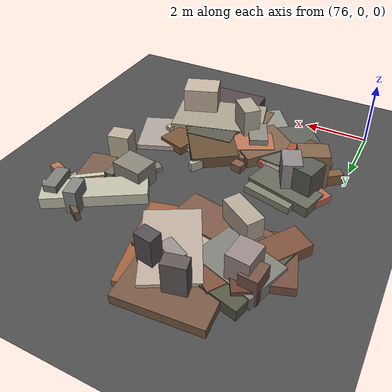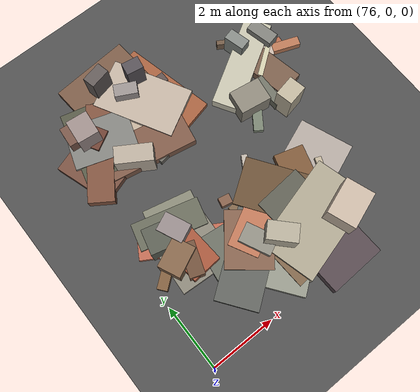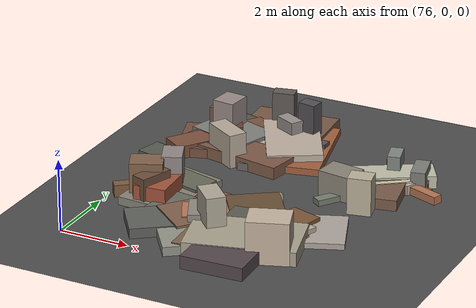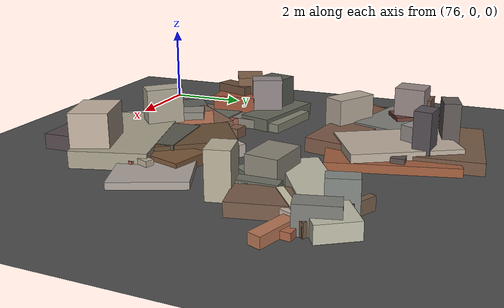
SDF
<sdf version="1.6">
 <world name="navitas_arena">
  <model name="ground_plane">
   <static>true</static>
   <link name="link">
    <collision name="collision">
     <geometry><plane><normal>0 0 1</normal><size>400 400</size></plane></geometry>
     <surface><friction><ode><mu>0.800</mu><mu2>0.800</mu2></ode></friction></surface>
    </collision>
    <visual name="visual">
     <cast_shadows>false</cast_shadows>
     <geometry><plane><normal>0 0 1</normal><size>400 400</size></plane></geometry>
     <material>
      <specular>0.04 0.04 0.04 1</specular>
      <script>
       <uri>file://media/materials/scripts/navitas_asphalt.material</uri>
       <name>Navitas/RealArenaAsphalt</name>
      </script>
     </material>
    </visual>
   </link>
  </model>
  <model name="deb_zor_0">
   <static>true</static>
   <pose>76.903 7.102 0.000 0 0 0</pose>
   <link name="link">
    <collision name="col_0">
     <pose>-0.069 0.422 0.422 0.000 0.000 -0.085</pose>
     <geometry><box><size>0.517 0.624 0.844</size></box></geometry>
    </collision>
    <visual name="vis_0">
     <pose>-0.069 0.422 0.422 0.000 0.000 -0.085</pose>
     <geometry><box><size>0.517 0.624 0.844</size></box></geometry>
     <material>
      <ambient>0.42 0.30 0.26 1</ambient>
      <diffuse>0.46 0.33 0.28 1</diffuse>
      <specular>0.05 0.05 0.045 1</specular>
     </material>
    </visual>
    <collision name="col_1">
     <pose>0.232 0.329 0.241 0.000 0.000 -1.061</pose>
     <geometry><box><size>1.128 0.651 0.482</size></box></geometry>
    </collision>
    <visual name="vis_1">
     <pose>0.232 0.329 0.241 0.000 0.000 -1.061</pose>
     <geometry><box><size>1.128 0.651 0.482</size></box></geometry>
     <material>
      <ambient>0.39 0.24 0.19 1</ambient>
      <diffuse>0.42 0.25 0.20 1</diffuse>
      <specular>0.05 0.05 0.045 1</specular>
     </material>
    </visual>
    <collision name="col_2">
     <pose>0.238 0.259 0.590 0.000 0.000 -0.102</pose>
     <geometry><box><size>0.652 0.734 1.180</size></box></geometry>
    </collision>
    <visual name="vis_2">
     <pose>0.238 0.259 0.590 0.000 0.000 -0.102</pose>
     <geometry><box><size>0.652 0.734 1.180</size></box></geometry>
     <material>
      <ambient>0.56 0.50 0.49 1</ambient>
      <diffuse>0.60 0.54 0.53 1</diffuse>
      <specular>0.05 0.05 0.045 1</specular>
     </material>
    </visual>
    <collision name="col_3">
     <pose>0.258 0.064 0.174 0.000 0.000 1.316</pose>
     <geometry><box><size>2.245 1.221 0.347</size></box></geometry>
    </collision>
    <visual name="vis_3">
     <pose>0.258 0.064 0.174 0.000 0.000 1.316</pose>
     <geometry><box><size>2.245 1.221 0.347</size></box></geometry>
     <material>
      <ambient>0.30 0.31 0.25 1</ambient>
      <diffuse>0.33 0.34 0.27 1</diffuse>
      <specular>0.05 0.05 0.045 1</specular>
     </material>
    </visual>
    <collision name="col_4">
     <pose>0.505 -0.036 0.195 0.000 0.000 -0.320</pose>
     <geometry><box><size>1.935 1.346 0.389</size></box></geometry>
    </collision>
    <visual name="vis_4">
     <pose>0.505 -0.036 0.195 0.000 0.000 -0.320</pose>
     <geometry><box><size>1.935 1.346 0.389</size></box></geometry>
     <material>
      <ambient>0.46 0.47 0.45 1</ambient>
      <diffuse>0.50 0.50 0.48 1</diffuse>
      <specular>0.05 0.05 0.045 1</specular>
     </material>
    </visual>
    <collision name="col_5">
     <pose>0.235 -0.337 0.186 0.000 0.000 0.976</pose>
     <geometry><box><size>3.027 0.781 0.372</size></box></geometry>
    </collision>
    <visual name="vis_5">
     <pose>0.235 -0.337 0.186 0.000 0.000 0.976</pose>
     <geometry><box><size>3.027 0.781 0.372</size></box></geometry>
     <material>
      <ambient>0.46 0.29 0.22 1</ambient>
      <diffuse>0.49 0.32 0.24 1</diffuse>
      <specular>0.05 0.05 0.045 1</specular>
     </material>
    </visual>
    <collision name="col_6">
     <pose>0.048 -0.544 0.138 0.000 0.000 -1.256</pose>
     <geometry><box><size>1.783 1.671 0.277</size></box></geometry>
    </collision>
    <visual name="vis_6">
     <pose>0.048 -0.544 0.138 0.000 0.000 -1.256</pose>
     <geometry><box><size>1.783 1.671 0.277</size></box></geometry>
     <material>
      <ambient>0.43 0.28 0.23 1</ambient>
      <diffuse>0.46 0.31 0.25 1</diffuse>
      <specular>0.05 0.05 0.045 1</specular>
     </material>
    </visual>
   </link>
  </model>
  <model name="deb_zor_23">
   <static>true</static>
   <pose>78.444 6.050 0.000 0 0 0</pose>
   <link name="link">
    <collision name="col_0">
     <pose>0.173 0.510 0.114 0.000 0.000 1.708</pose>
     <geometry><box><size>2.182 0.811 0.228</size></box></geometry>
    </collision>
    <visual name="vis_0">
     <pose>0.173 0.510 0.114 0.000 0.000 1.708</pose>
     <geometry><box><size>2.182 0.811 0.228</size></box></geometry>
     <material>
      <ambient>0.38 0.37 0.34 1</ambient>
      <diffuse>0.41 0.40 0.37 1</diffuse>
      <specular>0.05 0.05 0.045 1</specular>
     </material>
    </visual>
    <collision name="col_1">
     <pose>-0.123 0.059 0.173 0.000 0.000 -0.185</pose>
     <geometry><box><size>2.712 1.137 0.346</size></box></geometry>
    </collision>
    <visual name="vis_1">
     <pose>-0.123 0.059 0.173 0.000 0.000 -0.185</pose>
     <geometry><box><size>2.712 1.137 0.346</size></box></geometry>
     <material>
      <ambient>0.46 0.32 0.26 1</ambient>
      <diffuse>0.49 0.35 0.28 1</diffuse>
      <specular>0.05 0.05 0.045 1</specular>
     </material>
    </visual>
    <collision name="col_2">
     <pose>-0.621 -0.135 0.488 0.000 0.000 -0.558</pose>
     <geometry><box><size>1.123 0.530 0.976</size></box></geometry>
    </collision>
    <visual name="vis_2">
     <pose>-0.621 -0.135 0.488 0.000 0.000 -0.558</pose>
     <geometry><box><size>1.123 0.530 0.976</size></box></geometry>
     <material>
      <ambient>0.66 0.61 0.56 1</ambient>
      <diffuse>0.71 0.66 0.60 1</diffuse>
      <specular>0.05 0.05 0.045 1</specular>
     </material>
    </visual>
    <collision name="col_3">
     <pose>-0.002 0.438 0.120 0.000 0.000 -0.584</pose>
     <geometry><box><size>1.978 0.168 0.239</size></box></geometry>
    </collision>
    <visual name="vis_3">
     <pose>-0.002 0.438 0.120 0.000 0.000 -0.584</pose>
     <geometry><box><size>1.978 0.168 0.239</size></box></geometry>
     <material>
      <ambient>0.51 0.50 0.48 1</ambient>
      <diffuse>0.55 0.54 0.52 1</diffuse>
      <specular>0.05 0.05 0.045 1</specular>
     </material>
    </visual>
   </link>
  </model>
  <model name="deb_zor_54">
   <static>true</static>
   <pose>82.154 4.956 0.000 0 0 0</pose>
   <link name="link">
    <collision name="col_0">
     <pose>-0.489 0.059 0.082 0.000 0.000 0.960</pose>
     <geometry><box><size>1.448 0.295 0.164</size></box></geometry>
    </collision>
    <visual name="vis_0">
     <pose>-0.489 0.059 0.082 0.000 0.000 0.960</pose>
     <geometry><box><size>1.448 0.295 0.164</size></box></geometry>
     <material>
      <ambient>0.43 0.46 0.40 1</ambient>
      <diffuse>0.46 0.50 0.43 1</diffuse>
      <specular>0.05 0.05 0.045 1</specular>
     </material>
    </visual>
    <collision name="col_1">
     <pose>0.206 -0.076 0.153 0.000 0.000 1.619</pose>
     <geometry><box><size>0.393 0.184 0.307</size></box></geometry>
    </collision>
    <visual name="vis_1">
     <pose>0.206 -0.076 0.153 0.000 0.000 1.619</pose>
     <geometry><box><size>0.393 0.184 0.307</size></box></geometry>
     <material>
      <ambient>0.67 0.64 0.58 1</ambient>
      <diffuse>0.72 0.69 0.63 1</diffuse>
      <specular>0.05 0.05 0.045 1</specular>
     </material>
    </visual>
    <collision name="col_2">
     <pose>0.343 -0.374 0.524 0.000 0.000 1.773</pose>
     <geometry><box><size>0.530 0.658 1.049</size></box></geometry>
    </collision>
    <visual name="vis_2">
     <pose>0.343 -0.374 0.524 0.000 0.000 1.773</pose>
     <geometry><box><size>0.530 0.658 1.049</size></box></geometry>
     <material>
      <ambient>0.68 0.64 0.55 1</ambient>
      <diffuse>0.73 0.69 0.60 1</diffuse>
      <specular>0.05 0.05 0.045 1</specular>
     </material>
    </visual>
    <collision name="col_3">
     <pose>0.108 0.223 0.170 0.000 0.000 1.574</pose>
     <geometry><box><size>1.031 0.294 0.339</size></box></geometry>
    </collision>
    <visual name="vis_3">
     <pose>0.108 0.223 0.170 0.000 0.000 1.574</pose>
     <geometry><box><size>1.031 0.294 0.339</size></box></geometry>
     <material>
      <ambient>0.40 0.41 0.36 1</ambient>
      <diffuse>0.43 0.44 0.39 1</diffuse>
      <specular>0.05 0.05 0.045 1</specular>
     </material>
    </visual>
    <collision name="col_4">
     <pose>-0.570 0.331 0.365 0.000 0.000 1.420</pose>
     <geometry><box><size>0.745 0.974 0.729</size></box></geometry>
    </collision>
    <visual name="vis_4">
     <pose>-0.570 0.331 0.365 0.000 0.000 1.420</pose>
     <geometry><box><size>0.745 0.974 0.729</size></box></geometry>
     <material>
      <ambient>0.50 0.48 0.44 1</ambient>
      <diffuse>0.54 0.52 0.47 1</diffuse>
      <specular>0.05 0.05 0.045 1</specular>
     </material>
    </visual>
   </link>
  </model>
  <model name="deb_zor_88">
   <static>true</static>
   <pose>77.026 3.167 0.000 0 0 0</pose>
   <link name="link">
    <collision name="col_0">
     <pose>0.446 0.126 0.075 0.000 0.000 2.095</pose>
     <geometry><box><size>1.363 0.166 0.150</size></box></geometry>
    </collision>
    <visual name="vis_0">
     <pose>0.446 0.126 0.075 0.000 0.000 2.095</pose>
     <geometry><box><size>1.363 0.166 0.150</size></box></geometry>
     <material>
      <ambient>0.41 0.26 0.19 1</ambient>
      <diffuse>0.44 0.28 0.21 1</diffuse>
      <specular>0.05 0.05 0.045 1</specular>
     </material>
    </visual>
    <collision name="col_1">
     <pose>0.626 -0.098 0.111 0.000 0.000 2.608</pose>
     <geometry><box><size>3.079 0.743 0.223</size></box></geometry>
    </collision>
    <visual name="vis_1">
     <pose>0.626 -0.098 0.111 0.000 0.000 2.608</pose>
     <geometry><box><size>3.079 0.743 0.223</size></box></geometry>
     <material>
      <ambient>0.67 0.38 0.30 1</ambient>
      <diffuse>0.73 0.41 0.32 1</diffuse>
      <specular>0.05 0.05 0.045 1</specular>
     </material>
    </visual>
    <collision name="col_2">
     <pose>0.255 -0.592 0.436 0.000 0.000 1.232</pose>
     <geometry><box><size>0.958 0.444 0.872</size></box></geometry>
    </collision>
    <visual name="vis_2">
     <pose>0.255 -0.592 0.436 0.000 0.000 1.232</pose>
     <geometry><box><size>0.958 0.444 0.872</size></box></geometry>
     <material>
      <ambient>0.40 0.29 0.21 1</ambient>
      <diffuse>0.43 0.31 0.23 1</diffuse>
      <specular>0.05 0.05 0.045 1</specular>
     </material>
    </visual>
    <collision name="col_3">
     <pose>-0.176 -0.128 0.174 0.000 0.000 0.668</pose>
     <geometry><box><size>1.790 0.304 0.349</size></box></geometry>
    </collision>
    <visual name="vis_3">
     <pose>-0.176 -0.128 0.174 0.000 0.000 0.668</pose>
     <geometry><box><size>1.790 0.304 0.349</size></box></geometry>
     <material>
      <ambient>0.45 0.33 0.22 1</ambient>
      <diffuse>0.49 0.36 0.24 1</diffuse>
      <specular>0.05 0.05 0.045 1</specular>
     </material>
    </visual>
    <collision name="col_4">
     <pose>0.379 -0.474 0.323 0.000 0.000 1.646</pose>
     <geometry><box><size>1.146 0.928 0.645</size></box></geometry>
    </collision>
    <visual name="vis_4">
     <pose>0.379 -0.474 0.323 0.000 0.000 1.646</pose>
     <geometry><box><size>1.146 0.928 0.645</size></box></geometry>
     <material>
      <ambient>0.59 0.30 0.21 1</ambient>
      <diffuse>0.63 0.33 0.23 1</diffuse>
      <specular>0.05 0.05 0.045 1</specular>
     </material>
    </visual>
    <collision name="col_5">
     <pose>0.386 0.355 0.566 0.000 0.000 0.419</pose>
     <geometry><box><size>0.561 0.781 1.131</size></box></geometry>
    </collision>
    <visual name="vis_5">
     <pose>0.386 0.355 0.566 0.000 0.000 0.419</pose>
     <geometry><box><size>0.561 0.781 1.131</size></box></geometry>
     <material>
      <ambient>0.53 0.49 0.49 1</ambient>
      <diffuse>0.57 0.53 0.53 1</diffuse>
      <specular>0.05 0.05 0.045 1</specular>
     </material>
    </visual>
    <collision name="col_6">
     <pose>-0.037 -0.316 0.545 0.000 0.000 1.997</pose>
     <geometry><box><size>0.679 0.909 1.090</size></box></geometry>
    </collision>
    <visual name="vis_6">
     <pose>-0.037 -0.316 0.545 0.000 0.000 1.997</pose>
     <geometry><box><size>0.679 0.909 1.090</size></box></geometry>
     <material>
      <ambient>0.47 0.36 0.27 1</ambient>
      <diffuse>0.51 0.39 0.29 1</diffuse>
      <specular>0.05 0.05 0.045 1</specular>
     </material>
    </visual>
   </link>
  </model>
  <model name="deb_zor_118">
   <static>true</static>
   <pose>83.209 6.093 0.000 0 0 0</pose>
   <link name="link">
    <collision name="col_0">
     <pose>-0.058 0.191 0.141 0.000 0.000 2.753</pose>
     <geometry><box><size>0.303 0.445 0.282</size></box></geometry>
    </collision>
    <visual name="vis_0">
     <pose>-0.058 0.191 0.141 0.000 0.000 2.753</pose>
     <geometry><box><size>0.303 0.445 0.282</size></box></geometry>
     <material>
      <ambient>0.71 0.65 0.60 1</ambient>
      <diffuse>0.77 0.70 0.65 1</diffuse>
      <specular>0.05 0.05 0.045 1</specular>
     </material>
    </visual>
    <collision name="col_1">
     <pose>0.305 0.068 0.113 0.000 0.000 2.780</pose>
     <geometry><box><size>1.325 0.279 0.226</size></box></geometry>
    </collision>
    <visual name="vis_1">
     <pose>0.305 0.068 0.113 0.000 0.000 2.780</pose>
     <geometry><box><size>1.325 0.279 0.226</size></box></geometry>
     <material>
      <ambient>0.65 0.42 0.30 1</ambient>
      <diffuse>0.71 0.46 0.33 1</diffuse>
      <specular>0.05 0.05 0.045 1</specular>
     </material>
    </visual>
    <collision name="col_2">
     <pose>-0.475 -0.234 0.152 0.000 0.000 1.771</pose>
     <geometry><box><size>1.927 0.854 0.303</size></box></geometry>
    </collision>
    <visual name="vis_2">
     <pose>-0.475 -0.234 0.152 0.000 0.000 1.771</pose>
     <geometry><box><size>1.927 0.854 0.303</size></box></geometry>
     <material>
      <ambient>0.43 0.33 0.27 1</ambient>
      <diffuse>0.47 0.36 0.29 1</diffuse>
      <specular>0.05 0.05 0.045 1</specular>
     </material>
    </visual>
    <collision name="col_3">
     <pose>-0.418 -0.185 0.106 0.000 0.000 3.987</pose>
     <geometry><box><size>2.024 0.314 0.212</size></box></geometry>
    </collision>
    <visual name="vis_3">
     <pose>-0.418 -0.185 0.106 0.000 0.000 3.987</pose>
     <geometry><box><size>2.024 0.314 0.212</size></box></geometry>
     <material>
      <ambient>0.41 0.28 0.23 1</ambient>
      <diffuse>0.44 0.31 0.25 1</diffuse>
      <specular>0.05 0.05 0.045 1</specular>
     </material>
    </visual>
   </link>
  </model>
  <model name="deb_zor_192">
   <static>true</static>
   <pose>78.953 1.552 0.000 0 0 0</pose>
   <link name="link">
    <collision name="col_0">
     <pose>-0.539 0.535 0.135 0.000 0.000 1.450</pose>
     <geometry><box><size>1.605 1.715 0.270</size></box></geometry>
    </collision>
    <visual name="vis_0">
     <pose>-0.539 0.535 0.135 0.000 0.000 1.450</pose>
     <geometry><box><size>1.605 1.715 0.270</size></box></geometry>
     <material>
      <ambient>0.38 0.39 0.35 1</ambient>
      <diffuse>0.41 0.42 0.38 1</diffuse>
      <specular>0.05 0.05 0.045 1</specular>
     </material>
    </visual>
    <collision name="col_1">
     <pose>0.133 0.353 0.267 0.000 0.000 2.015</pose>
     <geometry><box><size>0.983 0.587 0.533</size></box></geometry>
    </collision>
    <visual name="vis_1">
     <pose>0.133 0.353 0.267 0.000 0.000 2.015</pose>
     <geometry><box><size>0.983 0.587 0.533</size></box></geometry>
     <material>
      <ambient>0.51 0.50 0.47 1</ambient>
      <diffuse>0.55 0.54 0.50 1</diffuse>
      <specular>0.05 0.05 0.045 1</specular>
     </material>
    </visual>
    <collision name="col_2">
     <pose>-0.054 0.520 0.162 0.000 0.000 2.464</pose>
     <geometry><box><size>1.404 1.694 0.324</size></box></geometry>
    </collision>
    <visual name="vis_2">
     <pose>-0.054 0.520 0.162 0.000 0.000 2.464</pose>
     <geometry><box><size>1.404 1.694 0.324</size></box></geometry>
     <material>
      <ambient>0.47 0.35 0.28 1</ambient>
      <diffuse>0.51 0.38 0.30 1</diffuse>
      <specular>0.05 0.05 0.045 1</specular>
     </material>
    </visual>
    <collision name="col_3">
     <pose>0.879 0.155 0.140 0.000 0.000 1.624</pose>
     <geometry><box><size>2.952 1.462 0.280</size></box></geometry>
    </collision>
    <visual name="vis_3">
     <pose>0.879 0.155 0.140 0.000 0.000 1.624</pose>
     <geometry><box><size>2.952 1.462 0.280</size></box></geometry>
     <material>
      <ambient>0.46 0.36 0.27 1</ambient>
      <diffuse>0.49 0.39 0.29 1</diffuse>
      <specular>0.05 0.05 0.045 1</specular>
     </material>
    </visual>
    <collision name="col_4">
     <pose>0.452 -0.209 0.092 0.000 0.000 1.480</pose>
     <geometry><box><size>2.341 0.722 0.185</size></box></geometry>
    </collision>
    <visual name="vis_4">
     <pose>0.452 -0.209 0.092 0.000 0.000 1.480</pose>
     <geometry><box><size>2.341 0.722 0.185</size></box></geometry>
     <material>
      <ambient>0.36 0.37 0.37 1</ambient>
      <diffuse>0.39 0.40 0.40 1</diffuse>
      <specular>0.05 0.05 0.045 1</specular>
     </material>
    </visual>
   </link>
  </model>
  <model name="deb_zor_202">
   <static>true</static>
   <pose>77.647 3.511 0.000 0 0 0</pose>
   <link name="link">
    <collision name="col_0">
     <pose>-0.222 0.306 0.159 0.000 0.000 -0.265</pose>
     <geometry><box><size>2.035 0.831 0.317</size></box></geometry>
    </collision>
    <visual name="vis_0">
     <pose>-0.222 0.306 0.159 0.000 0.000 -0.265</pose>
     <geometry><box><size>2.035 0.831 0.317</size></box></geometry>
     <material>
      <ambient>0.37 0.38 0.32 1</ambient>
      <diffuse>0.40 0.41 0.35 1</diffuse>
      <specular>0.05 0.05 0.045 1</specular>
     </material>
    </visual>
    <collision name="col_1">
     <pose>-0.085 -0.032 0.110 0.000 0.000 1.345</pose>
     <geometry><box><size>1.935 1.521 0.219</size></box></geometry>
    </collision>
    <visual name="vis_1">
     <pose>-0.085 -0.032 0.110 0.000 0.000 1.345</pose>
     <geometry><box><size>1.935 1.521 0.219</size></box></geometry>
     <material>
      <ambient>0.49 0.48 0.42 1</ambient>
      <diffuse>0.52 0.52 0.45 1</diffuse>
      <specular>0.05 0.05 0.045 1</specular>
     </material>
    </visual>
    <collision name="col_2">
     <pose>-0.167 -0.680 0.118 0.000 0.000 -0.066</pose>
     <geometry><box><size>1.754 1.719 0.237</size></box></geometry>
    </collision>
    <visual name="vis_2">
     <pose>-0.167 -0.680 0.118 0.000 0.000 -0.066</pose>
     <geometry><box><size>1.754 1.719 0.237</size></box></geometry>
     <material>
      <ambient>0.49 0.47 0.42 1</ambient>
      <diffuse>0.53 0.51 0.46 1</diffuse>
      <specular>0.05 0.05 0.045 1</specular>
     </material>
    </visual>
    <collision name="col_3">
     <pose>-0.524 0.554 0.113 0.000 0.000 -0.017</pose>
     <geometry><box><size>0.420 0.347 0.225</size></box></geometry>
    </collision>
    <visual name="vis_3">
     <pose>-0.524 0.554 0.113 0.000 0.000 -0.017</pose>
     <geometry><box><size>0.420 0.347 0.225</size></box></geometry>
     <material>
      <ambient>0.37 0.36 0.37 1</ambient>
      <diffuse>0.39 0.39 0.40 1</diffuse>
      <specular>0.05 0.05 0.045 1</specular>
     </material>
    </visual>
    <collision name="col_4">
     <pose>-0.634 0.035 0.536 0.000 0.000 1.320</pose>
     <geometry><box><size>0.745 0.901 1.072</size></box></geometry>
    </collision>
    <visual name="vis_4">
     <pose>-0.634 0.035 0.536 0.000 0.000 1.320</pose>
     <geometry><box><size>0.745 0.901 1.072</size></box></geometry>
     <material>
      <ambient>0.33 0.34 0.30 1</ambient>
      <diffuse>0.35 0.36 0.32 1</diffuse>
      <specular>0.05 0.05 0.045 1</specular>
     </material>
    </visual>
   </link>
  </model>
  <model name="deb_zor_213">
   <static>true</static>
   <pose>79.621 3.291 0.000 0 0 0</pose>
   <link name="link">
    <collision name="col_0">
     <pose>-0.019 -0.815 0.172 0.000 0.000 0.482</pose>
     <geometry><box><size>2.384 0.925 0.345</size></box></geometry>
    </collision>
    <visual name="vis_0">
     <pose>-0.019 -0.815 0.172 0.000 0.000 0.482</pose>
     <geometry><box><size>2.384 0.925 0.345</size></box></geometry>
     <material>
      <ambient>0.67 0.42 0.32 1</ambient>
      <diffuse>0.73 0.46 0.34 1</diffuse>
      <specular>0.05 0.05 0.045 1</specular>
     </material>
    </visual>
    <collision name="col_1">
     <pose>-0.513 0.082 0.126 0.000 0.000 1.368</pose>
     <geometry><box><size>0.284 0.346 0.253</size></box></geometry>
    </collision>
    <visual name="vis_1">
     <pose>-0.513 0.082 0.126 0.000 0.000 1.368</pose>
     <geometry><box><size>0.284 0.346 0.253</size></box></geometry>
     <material>
      <ambient>0.47 0.35 0.27 1</ambient>
      <diffuse>0.51 0.37 0.29 1</diffuse>
      <specular>0.05 0.05 0.045 1</specular>
     </material>
    </visual>
    <collision name="col_2">
     <pose>0.766 0.171 0.114 0.000 0.000 1.760</pose>
     <geometry><box><size>0.258 0.404 0.227</size></box></geometry>
    </collision>
    <visual name="vis_2">
     <pose>0.766 0.171 0.114 0.000 0.000 1.760</pose>
     <geometry><box><size>0.258 0.404 0.227</size></box></geometry>
     <material>
      <ambient>0.30 0.29 0.26 1</ambient>
      <diffuse>0.33 0.31 0.28 1</diffuse>
      <specular>0.05 0.05 0.045 1</specular>
     </material>
    </visual>
    <collision name="col_3">
     <pose>0.266 -0.036 0.145 0.000 0.000 1.026</pose>
     <geometry><box><size>1.956 0.179 0.291</size></box></geometry>
    </collision>
    <visual name="vis_3">
     <pose>0.266 -0.036 0.145 0.000 0.000 1.026</pose>
     <geometry><box><size>1.956 0.179 0.291</size></box></geometry>
     <material>
      <ambient>0.67 0.64 0.60 1</ambient>
      <diffuse>0.73 0.69 0.65 1</diffuse>
      <specular>0.05 0.05 0.045 1</specular>
     </material>
    </visual>
   </link>
  </model>
  <model name="deb_zor_238">
   <static>true</static>
   <pose>83.032 6.450 0.000 0 0 0</pose>
   <link name="link">
    <collision name="col_0">
     <pose>-0.140 -0.648 0.102 0.000 0.000 0.749</pose>
     <geometry><box><size>0.412 0.348 0.204</size></box></geometry>
    </collision>
    <visual name="vis_0">
     <pose>-0.140 -0.648 0.102 0.000 0.000 0.749</pose>
     <geometry><box><size>0.412 0.348 0.204</size></box></geometry>
     <material>
      <ambient>0.43 0.30 0.20 1</ambient>
      <diffuse>0.46 0.32 0.21 1</diffuse>
      <specular>0.05 0.05 0.045 1</specular>
     </material>
    </visual>
    <collision name="col_1">
     <pose>-0.234 0.522 0.147 0.000 0.000 2.604</pose>
     <geometry><box><size>1.759 0.150 0.294</size></box></geometry>
    </collision>
    <visual name="vis_1">
     <pose>-0.234 0.522 0.147 0.000 0.000 2.604</pose>
     <geometry><box><size>1.759 0.150 0.294</size></box></geometry>
     <material>
      <ambient>0.41 0.32 0.25 1</ambient>
      <diffuse>0.44 0.35 0.27 1</diffuse>
      <specular>0.05 0.05 0.045 1</specular>
     </material>
    </visual>
    <collision name="col_2">
     <pose>0.247 0.283 0.294 0.000 0.000 1.802</pose>
     <geometry><box><size>0.864 0.406 0.589</size></box></geometry>
    </collision>
    <visual name="vis_2">
     <pose>0.247 0.283 0.294 0.000 0.000 1.802</pose>
     <geometry><box><size>0.864 0.406 0.589</size></box></geometry>
     <material>
      <ambient>0.45 0.46 0.43 1</ambient>
      <diffuse>0.49 0.49 0.47 1</diffuse>
      <specular>0.05 0.05 0.045 1</specular>
     </material>
    </visual>
    <collision name="col_3">
     <pose>-0.244 -0.422 0.163 0.000 0.000 0.638</pose>
     <geometry><box><size>1.008 0.154 0.326</size></box></geometry>
    </collision>
    <visual name="vis_3">
     <pose>-0.244 -0.422 0.163 0.000 0.000 0.638</pose>
     <geometry><box><size>1.008 0.154 0.326</size></box></geometry>
     <material>
      <ambient>0.74 0.72 0.61 1</ambient>
      <diffuse>0.80 0.78 0.66 1</diffuse>
      <specular>0.05 0.05 0.045 1</specular>
     </material>
    </visual>
    <collision name="col_4">
     <pose>-0.174 -0.055 0.077 0.000 0.000 -0.133</pose>
     <geometry><box><size>1.779 0.307 0.153</size></box></geometry>
    </collision>
    <visual name="vis_4">
     <pose>-0.174 -0.055 0.077 0.000 0.000 -0.133</pose>
     <geometry><box><size>1.779 0.307 0.153</size></box></geometry>
     <material>
      <ambient>0.63 0.37 0.27 1</ambient>
      <diffuse>0.68 0.40 0.29 1</diffuse>
      <specular>0.05 0.05 0.045 1</specular>
     </material>
    </visual>
    <collision name="col_5">
     <pose>-0.812 -0.065 0.179 0.000 0.000 0.545</pose>
     <geometry><box><size>3.024 0.861 0.358</size></box></geometry>
    </collision>
    <visual name="vis_5">
     <pose>-0.812 -0.065 0.179 0.000 0.000 0.545</pose>
     <geometry><box><size>3.024 0.861 0.358</size></box></geometry>
     <material>
      <ambient>0.70 0.69 0.61 1</ambient>
      <diffuse>0.75 0.74 0.66 1</diffuse>
      <specular>0.05 0.05 0.045 1</specular>
     </material>
    </visual>
    <collision name="col_6">
     <pose>-0.591 0.498 0.376 0.000 0.000 1.824</pose>
     <geometry><box><size>0.649 0.362 0.753</size></box></geometry>
    </collision>
    <visual name="vis_6">
     <pose>-0.591 0.498 0.376 0.000 0.000 1.824</pose>
     <geometry><box><size>0.649 0.362 0.753</size></box></geometry>
     <material>
      <ambient>0.47 0.49 0.47 1</ambient>
      <diffuse>0.51 0.53 0.51 1</diffuse>
      <specular>0.05 0.05 0.045 1</specular>
     </material>
    </visual>
   </link>
  </model>
  <model name="deb_zor_293">
   <static>true</static>
   <pose>79.392 7.599 0.000 0 0 0</pose>
   <link name="link">
    <collision name="col_0">
     <pose>0.115 -0.322 0.100 0.000 0.000 1.804</pose>
     <geometry><box><size>2.887 1.493 0.200</size></box></geometry>
    </collision>
    <visual name="vis_0">
     <pose>0.115 -0.322 0.100 0.000 0.000 1.804</pose>
     <geometry><box><size>2.887 1.493 0.200</size></box></geometry>
     <material>
      <ambient>0.58 0.34 0.23 1</ambient>
      <diffuse>0.63 0.37 0.24 1</diffuse>
      <specular>0.05 0.05 0.045 1</specular>
     </material>
    </visual>
    <collision name="col_1">
     <pose>-0.039 0.374 0.623 0.000 0.000 2.972</pose>
     <geometry><box><size>0.523 0.396 1.247</size></box></geometry>
    </collision>
    <visual name="vis_1">
     <pose>-0.039 0.374 0.623 0.000 0.000 2.972</pose>
     <geometry><box><size>0.523 0.396 1.247</size></box></geometry>
     <material>
      <ambient>0.30 0.29 0.31 1</ambient>
      <diffuse>0.33 0.31 0.33 1</diffuse>
      <specular>0.05 0.05 0.045 1</specular>
     </material>
    </visual>
    <collision name="col_2">
     <pose>-0.550 0.138 0.376 0.000 0.000 2.663</pose>
     <geometry><box><size>0.701 0.387 0.751</size></box></geometry>
    </collision>
    <visual name="vis_2">
     <pose>-0.550 0.138 0.376 0.000 0.000 2.663</pose>
     <geometry><box><size>0.701 0.387 0.751</size></box></geometry>
     <material>
      <ambient>0.55 0.52 0.51 1</ambient>
      <diffuse>0.59 0.56 0.55 1</diffuse>
      <specular>0.05 0.05 0.045 1</specular>
     </material>
    </visual>
    <collision name="col_3">
     <pose>-0.259 -0.262 0.197 0.000 0.000 2.075</pose>
     <geometry><box><size>2.541 1.563 0.393</size></box></geometry>
    </collision>
    <visual name="vis_3">
     <pose>-0.259 -0.262 0.197 0.000 0.000 2.075</pose>
     <geometry><box><size>2.541 1.563 0.393</size></box></geometry>
     <material>
      <ambient>0.69 0.63 0.57 1</ambient>
      <diffuse>0.74 0.68 0.62 1</diffuse>
      <specular>0.05 0.05 0.045 1</specular>
     </material>
    </visual>
   </link>
  </model>
  <model name="deb_zor_308">
   <static>true</static>
   <pose>78.547 7.400 0.000 0 0 0</pose>
   <link name="link">
    <collision name="col_0">
     <pose>-0.038 1.031 0.144 0.000 0.000 0.075</pose>
     <geometry><box><size>2.427 1.524 0.289</size></box></geometry>
    </collision>
    <visual name="vis_0">
     <pose>-0.038 1.031 0.144 0.000 0.000 0.075</pose>
     <geometry><box><size>2.427 1.524 0.289</size></box></geometry>
     <material>
      <ambient>0.44 0.32 0.25 1</ambient>
      <diffuse>0.47 0.35 0.27 1</diffuse>
      <specular>0.05 0.05 0.045 1</specular>
     </material>
    </visual>
    <collision name="col_1">
     <pose>0.293 -0.282 0.140 0.000 0.000 0.092</pose>
     <geometry><box><size>1.884 0.927 0.280</size></box></geometry>
    </collision>
    <visual name="vis_1">
     <pose>0.293 -0.282 0.140 0.000 0.000 0.092</pose>
     <geometry><box><size>1.884 0.927 0.280</size></box></geometry>
     <material>
      <ambient>0.68 0.62 0.54 1</ambient>
      <diffuse>0.74 0.67 0.59 1</diffuse>
      <specular>0.05 0.05 0.045 1</specular>
     </material>
    </visual>
    <collision name="col_2">
     <pose>0.470 -0.307 0.107 0.000 0.000 -0.480</pose>
     <geometry><box><size>1.408 0.176 0.213</size></box></geometry>
    </collision>
    <visual name="vis_2">
     <pose>0.470 -0.307 0.107 0.000 0.000 -0.480</pose>
     <geometry><box><size>1.408 0.176 0.213</size></box></geometry>
     <material>
      <ambient>0.44 0.32 0.23 1</ambient>
      <diffuse>0.47 0.34 0.25 1</diffuse>
      <specular>0.05 0.05 0.045 1</specular>
     </material>
    </visual>
    <collision name="col_3">
     <pose>0.234 -0.493 0.087 0.000 0.000 1.403</pose>
     <geometry><box><size>2.825 1.206 0.174</size></box></geometry>
    </collision>
    <visual name="vis_3">
     <pose>0.234 -0.493 0.087 0.000 0.000 1.403</pose>
     <geometry><box><size>2.825 1.206 0.174</size></box></geometry>
     <material>
      <ambient>0.47 0.45 0.46 1</ambient>
      <diffuse>0.51 0.48 0.50 1</diffuse>
      <specular>0.05 0.05 0.045 1</specular>
     </material>
    </visual>
    <collision name="col_4">
     <pose>-0.191 0.995 0.615 0.000 0.000 0.218</pose>
     <geometry><box><size>0.634 0.381 1.229</size></box></geometry>
    </collision>
    <visual name="vis_4">
     <pose>-0.191 0.995 0.615 0.000 0.000 0.218</pose>
     <geometry><box><size>0.634 0.381 1.229</size></box></geometry>
     <material>
      <ambient>0.35 0.33 0.31 1</ambient>
      <diffuse>0.38 0.35 0.34 1</diffuse>
      <specular>0.05 0.05 0.045 1</specular>
     </material>
    </visual>
    <collision name="col_5">
     <pose>0.790 0.128 0.158 0.000 0.000 -0.007</pose>
     <geometry><box><size>1.535 0.311 0.316</size></box></geometry>
    </collision>
    <visual name="vis_5">
     <pose>0.790 0.128 0.158 0.000 0.000 -0.007</pose>
     <geometry><box><size>1.535 0.311 0.316</size></box></geometry>
     <material>
      <ambient>0.33 0.29 0.28 1</ambient>
      <diffuse>0.36 0.31 0.30 1</diffuse>
      <specular>0.05 0.05 0.045 1</specular>
     </material>
    </visual>
   </link>
  </model>
  <model name="deb_zor_343">
   <static>true</static>
   <pose>79.168 1.601 0.000 0 0 0</pose>
   <link name="link">
    <collision name="col_0">
     <pose>-0.222 0.303 0.147 0.000 0.000 2.253</pose>
     <geometry><box><size>1.185 0.212 0.293</size></box></geometry>
    </collision>
    <visual name="vis_0">
     <pose>-0.222 0.303 0.147 0.000 0.000 2.253</pose>
     <geometry><box><size>1.185 0.212 0.293</size></box></geometry>
     <material>
      <ambient>0.27 0.27 0.25 1</ambient>
      <diffuse>0.29 0.30 0.27 1</diffuse>
      <specular>0.05 0.05 0.045 1</specular>
     </material>
    </visual>
    <collision name="col_1">
     <pose>-0.567 0.115 0.142 0.000 0.000 3.774</pose>
     <geometry><box><size>2.829 1.282 0.283</size></box></geometry>
    </collision>
    <visual name="vis_1">
     <pose>-0.567 0.115 0.142 0.000 0.000 3.774</pose>
     <geometry><box><size>2.829 1.282 0.283</size></box></geometry>
     <material>
      <ambient>0.34 0.35 0.34 1</ambient>
      <diffuse>0.37 0.38 0.36 1</diffuse>
      <specular>0.05 0.05 0.045 1</specular>
     </material>
    </visual>
    <collision name="col_2">
     <pose>-0.118 -0.562 0.128 0.000 0.000 2.211</pose>
     <geometry><box><size>1.941 1.322 0.256</size></box></geometry>
    </collision>
    <visual name="vis_2">
     <pose>-0.118 -0.562 0.128 0.000 0.000 2.211</pose>
     <geometry><box><size>1.941 1.322 0.256</size></box></geometry>
     <material>
      <ambient>0.53 0.54 0.49 1</ambient>
      <diffuse>0.57 0.58 0.53 1</diffuse>
      <specular>0.05 0.05 0.045 1</specular>
     </material>
    </visual>
    <collision name="col_3">
     <pose>-0.472 0.020 0.136 0.000 0.000 3.109</pose>
     <geometry><box><size>0.182 0.439 0.273</size></box></geometry>
    </collision>
    <visual name="vis_3">
     <pose>-0.472 0.020 0.136 0.000 0.000 3.109</pose>
     <geometry><box><size>0.182 0.439 0.273</size></box></geometry>
     <material>
      <ambient>0.59 0.33 0.23 1</ambient>
      <diffuse>0.63 0.36 0.24 1</diffuse>
      <specular>0.05 0.05 0.045 1</specular>
     </material>
    </visual>
    <collision name="col_4">
     <pose>0.442 -0.002 0.613 0.000 0.000 3.911</pose>
     <geometry><box><size>0.537 0.883 1.226</size></box></geometry>
    </collision>
    <visual name="vis_4">
     <pose>0.442 -0.002 0.613 0.000 0.000 3.911</pose>
     <geometry><box><size>0.537 0.883 1.226</size></box></geometry>
     <material>
      <ambient>0.64 0.61 0.55 1</ambient>
      <diffuse>0.69 0.66 0.59 1</diffuse>
      <specular>0.05 0.05 0.045 1</specular>
     </material>
    </visual>
   </link>
  </model>
  <model name="deb_zor_353">
   <static>true</static>
   <pose>80.710 1.713 0.000 0 0 0</pose>
   <link name="link">
    <collision name="col_0">
     <pose>-0.074 -0.893 0.184 0.000 0.000 1.610</pose>
     <geometry><box><size>2.623 1.738 0.367</size></box></geometry>
    </collision>
    <visual name="vis_0">
     <pose>-0.074 -0.893 0.184 0.000 0.000 1.610</pose>
     <geometry><box><size>2.623 1.738 0.367</size></box></geometry>
     <material>
      <ambient>0.30 0.26 0.28 1</ambient>
      <diffuse>0.33 0.28 0.30 1</diffuse>
      <specular>0.05 0.05 0.045 1</specular>
     </material>
    </visual>
    <collision name="col_1">
     <pose>0.653 0.814 0.081 0.000 0.000 0.374</pose>
     <geometry><box><size>3.061 1.682 0.161</size></box></geometry>
    </collision>
    <visual name="vis_1">
     <pose>0.653 0.814 0.081 0.000 0.000 0.374</pose>
     <geometry><box><size>3.061 1.682 0.161</size></box></geometry>
     <material>
      <ambient>0.63 0.59 0.56 1</ambient>
      <diffuse>0.68 0.64 0.61 1</diffuse>
      <specular>0.05 0.05 0.045 1</specular>
     </material>
    </visual>
    <collision name="col_2">
     <pose>-0.313 0.635 0.114 0.000 0.000 0.535</pose>
     <geometry><box><size>0.281 0.176 0.228</size></box></geometry>
    </collision>
    <visual name="vis_2">
     <pose>-0.313 0.635 0.114 0.000 0.000 0.535</pose>
     <geometry><box><size>0.281 0.176 0.228</size></box></geometry>
     <material>
      <ambient>0.64 0.42 0.31 1</ambient>
      <diffuse>0.69 0.45 0.33 1</diffuse>
      <specular>0.05 0.05 0.045 1</specular>
     </material>
    </visual>
    <collision name="col_3">
     <pose>0.017 -0.380 0.197 0.000 0.000 0.262</pose>
     <geometry><box><size>3.007 1.756 0.394</size></box></geometry>
    </collision>
    <visual name="vis_3">
     <pose>0.017 -0.380 0.197 0.000 0.000 0.262</pose>
     <geometry><box><size>3.007 1.756 0.394</size></box></geometry>
     <material>
      <ambient>0.61 0.58 0.51 1</ambient>
      <diffuse>0.66 0.63 0.55 1</diffuse>
      <specular>0.05 0.05 0.045 1</specular>
     </material>
    </visual>
   </link>
  </model>
  <model name="deb_zor_367">
   <static>true</static>
   <pose>80.709 1.822 0.000 0 0 0</pose>
   <link name="link">
    <collision name="col_0">
     <pose>0.023 0.263 0.126 0.000 0.000 2.561</pose>
     <geometry><box><size>1.489 0.298 0.252</size></box></geometry>
    </collision>
    <visual name="vis_0">
     <pose>0.023 0.263 0.126 0.000 0.000 2.561</pose>
     <geometry><box><size>1.489 0.298 0.252</size></box></geometry>
     <material>
      <ambient>0.66 0.38 0.27 1</ambient>
      <diffuse>0.71 0.41 0.29 1</diffuse>
      <specular>0.05 0.05 0.045 1</specular>
     </material>
    </visual>
    <collision name="col_1">
     <pose>0.627 0.303 0.170 0.000 0.000 2.066</pose>
     <geometry><box><size>0.228 0.287 0.341</size></box></geometry>
    </collision>
    <visual name="vis_1">
     <pose>0.627 0.303 0.170 0.000 0.000 2.066</pose>
     <geometry><box><size>0.228 0.287 0.341</size></box></geometry>
     <material>
      <ambient>0.63 0.36 0.25 1</ambient>
      <diffuse>0.69 0.39 0.27 1</diffuse>
      <specular>0.05 0.05 0.045 1</specular>
     </material>
    </visual>
    <collision name="col_2">
     <pose>-0.074 0.510 0.184 0.000 0.000 2.175</pose>
     <geometry><box><size>3.010 1.456 0.368</size></box></geometry>
    </collision>
    <visual name="vis_2">
     <pose>-0.074 0.510 0.184 0.000 0.000 2.175</pose>
     <geometry><box><size>3.010 1.456 0.368</size></box></geometry>
     <material>
      <ambient>0.38 0.28 0.19 1</ambient>
      <diffuse>0.41 0.31 0.21 1</diffuse>
      <specular>0.05 0.05 0.045 1</specular>
     </material>
    </visual>
    <collision name="col_3">
     <pose>-0.172 0.231 0.194 0.000 0.000 3.219</pose>
     <geometry><box><size>1.516 1.372 0.388</size></box></geometry>
    </collision>
    <visual name="vis_3">
     <pose>-0.172 0.231 0.194 0.000 0.000 3.219</pose>
     <geometry><box><size>1.516 1.372 0.388</size></box></geometry>
     <material>
      <ambient>0.33 0.34 0.30 1</ambient>
      <diffuse>0.36 0.36 0.32 1</diffuse>
      <specular>0.05 0.05 0.045 1</specular>
     </material>
    </visual>
   </link>
  </model>
  <model name="deb_zor_368">
   <static>true</static>
   <pose>81.502 1.745 0.000 0 0 0</pose>
   <link name="link">
    <collision name="col_0">
     <pose>-0.520 0.439 0.092 0.000 0.000 2.067</pose>
     <geometry><box><size>1.937 1.053 0.184</size></box></geometry>
    </collision>
    <visual name="vis_0">
     <pose>-0.520 0.439 0.092 0.000 0.000 2.067</pose>
     <geometry><box><size>1.937 1.053 0.184</size></box></geometry>
     <material>
      <ambient>0.59 0.56 0.50 1</ambient>
      <diffuse>0.63 0.60 0.54 1</diffuse>
      <specular>0.05 0.05 0.045 1</specular>
     </material>
    </visual>
    <collision name="col_1">
     <pose>-0.129 0.042 0.123 0.000 0.000 2.150</pose>
     <geometry><box><size>0.447 0.194 0.247</size></box></geometry>
    </collision>
    <visual name="vis_1">
     <pose>-0.129 0.042 0.123 0.000 0.000 2.150</pose>
     <geometry><box><size>0.447 0.194 0.247</size></box></geometry>
     <material>
      <ambient>0.67 0.39 0.33 1</ambient>
      <diffuse>0.72 0.42 0.35 1</diffuse>
      <specular>0.05 0.05 0.045 1</specular>
     </material>
    </visual>
    <collision name="col_2">
     <pose>0.321 -0.065 0.114 0.000 0.000 1.305</pose>
     <geometry><box><size>1.280 0.202 0.227</size></box></geometry>
    </collision>
    <visual name="vis_2">
     <pose>0.321 -0.065 0.114 0.000 0.000 1.305</pose>
     <geometry><box><size>1.280 0.202 0.227</size></box></geometry>
     <material>
      <ambient>0.63 0.38 0.28 1</ambient>
      <diffuse>0.68 0.42 0.31 1</diffuse>
      <specular>0.05 0.05 0.045 1</specular>
     </material>
    </visual>
    <collision name="col_3">
     <pose>0.431 0.705 0.147 0.000 0.000 1.197</pose>
     <geometry><box><size>0.503 0.196 0.295</size></box></geometry>
    </collision>
    <visual name="vis_3">
     <pose>0.431 0.705 0.147 0.000 0.000 1.197</pose>
     <geometry><box><size>0.503 0.196 0.295</size></box></geometry>
     <material>
      <ambient>0.68 0.63 0.54 1</ambient>
      <diffuse>0.73 0.68 0.59 1</diffuse>
      <specular>0.05 0.05 0.045 1</specular>
     </material>
    </visual>
    <collision name="col_4">
     <pose>-0.429 0.231 0.133 0.000 0.000 1.281</pose>
     <geometry><box><size>2.953 0.924 0.266</size></box></geometry>
    </collision>
    <visual name="vis_4">
     <pose>-0.429 0.231 0.133 0.000 0.000 1.281</pose>
     <geometry><box><size>2.953 0.924 0.266</size></box></geometry>
     <material>
      <ambient>0.45 0.31 0.21 1</ambient>
      <diffuse>0.48 0.34 0.22 1</diffuse>
      <specular>0.05 0.05 0.045 1</specular>
     </material>
    </visual>
    <collision name="col_5">
     <pose>0.061 -0.705 0.593 0.000 0.000 3.486</pose>
     <geometry><box><size>1.140 0.873 1.186</size></box></geometry>
    </collision>
    <visual name="vis_5">
     <pose>0.061 -0.705 0.593 0.000 0.000 3.486</pose>
     <geometry><box><size>1.140 0.873 1.186</size></box></geometry>
     <material>
      <ambient>0.71 0.65 0.58 1</ambient>
      <diffuse>0.77 0.70 0.63 1</diffuse>
      <specular>0.05 0.05 0.045 1</specular>
     </material>
    </visual>
    <collision name="col_6">
     <pose>-0.348 0.538 0.165 0.000 0.000 2.861</pose>
     <geometry><box><size>1.511 0.308 0.330</size></box></geometry>
    </collision>
    <visual name="vis_6">
     <pose>-0.348 0.538 0.165 0.000 0.000 2.861</pose>
     <geometry><box><size>1.511 0.308 0.330</size></box></geometry>
     <material>
      <ambient>0.38 0.37 0.38 1</ambient>
      <diffuse>0.41 0.39 0.41 1</diffuse>
      <specular>0.05 0.05 0.045 1</specular>
     </material>
    </visual>
   </link>
  </model>
 </world>
</sdf>
